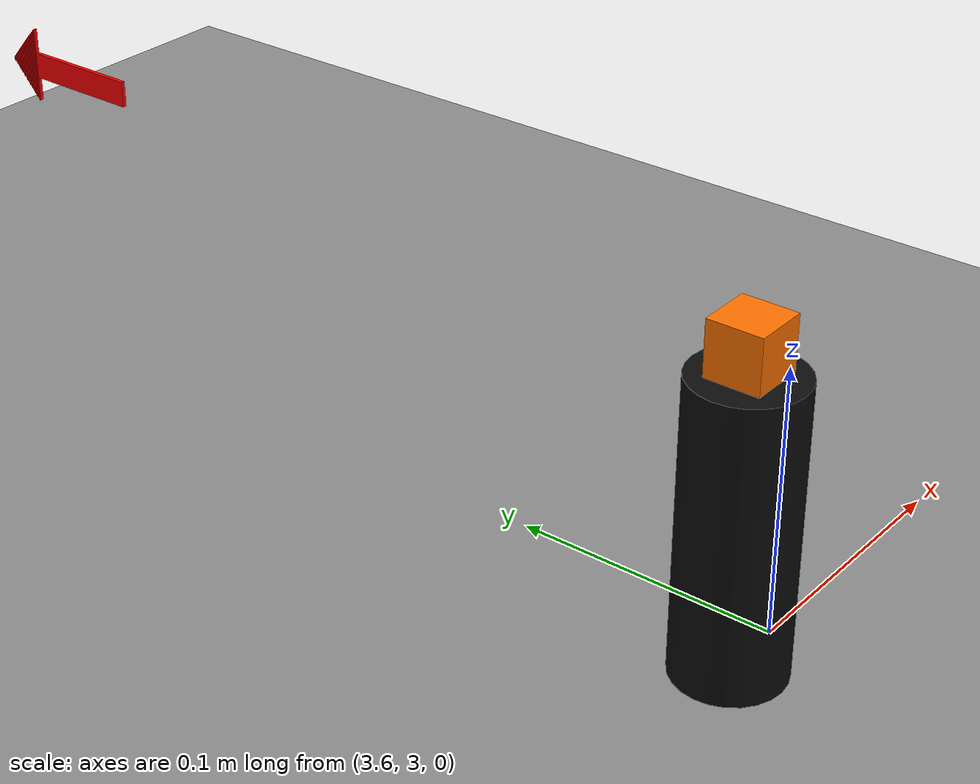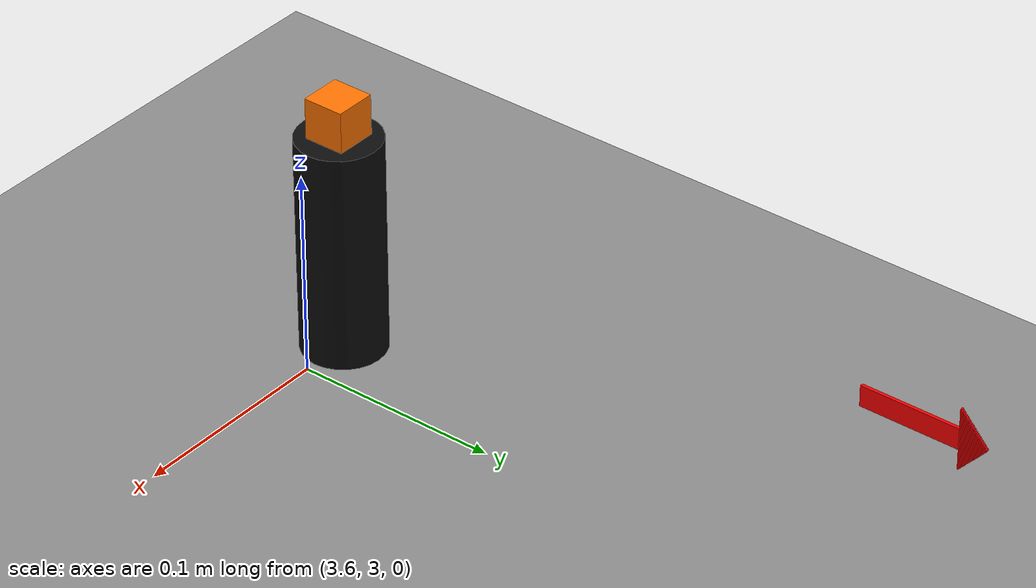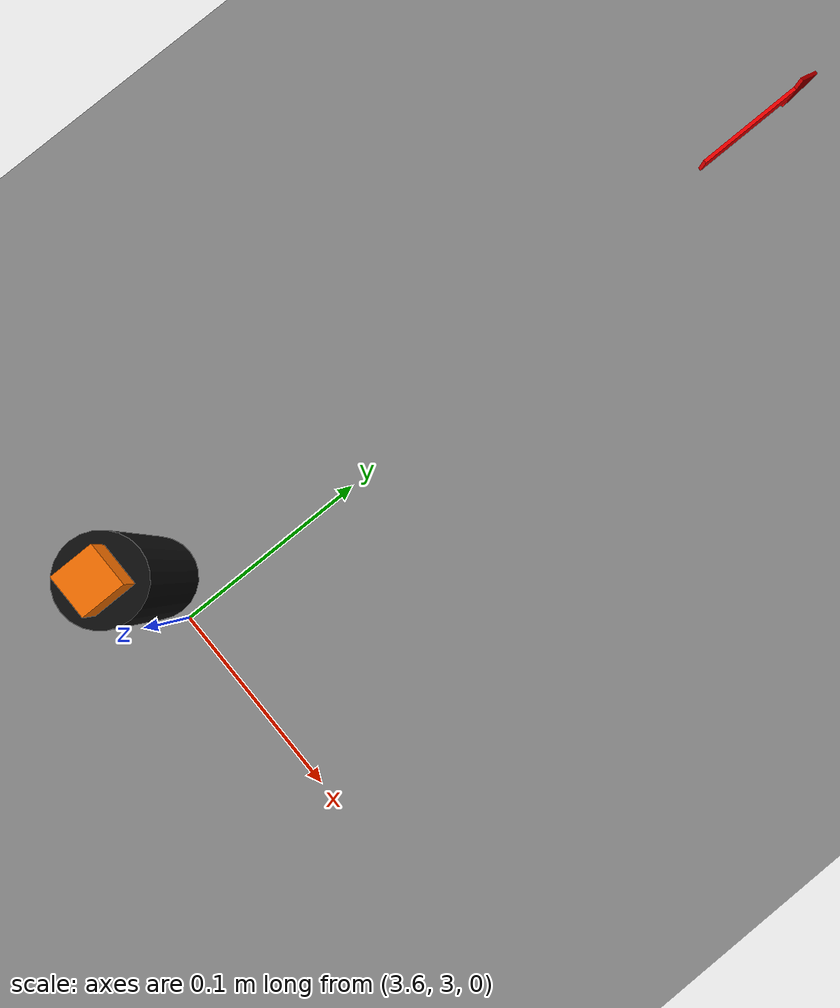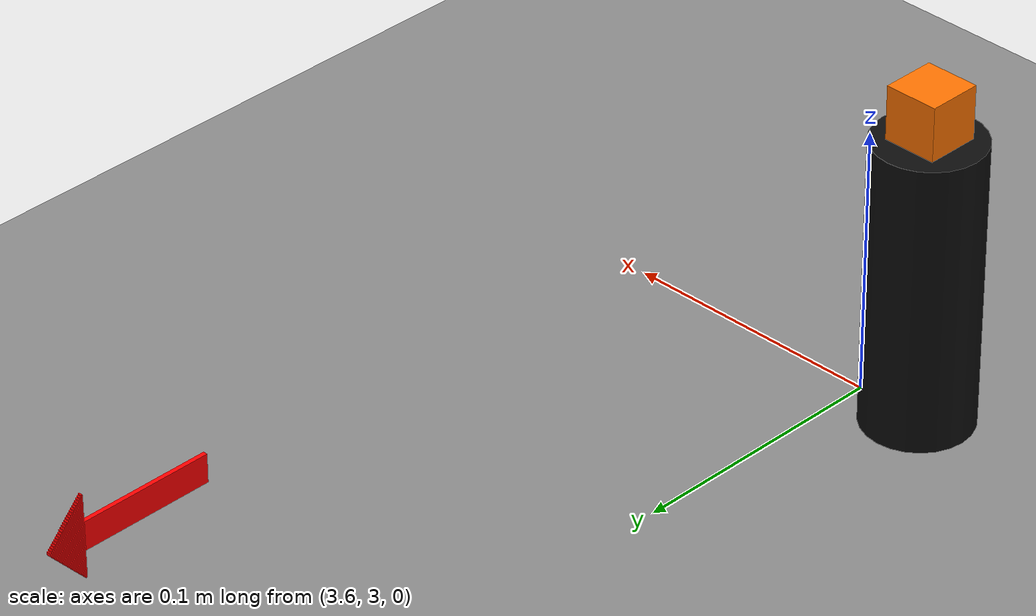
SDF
<sdf version="1.9">
 <world name="ros2_world">
  <model name="ground_plane">
   <static>true</static>
   <link name="link">
    <collision name="collision">
     <geometry><plane><normal>0 0 1</normal><size>30 30</size></plane></geometry>
    </collision>
    <visual name="visual">
     <geometry><plane><normal>0 0 1</normal><size>30 30</size></plane></geometry>
     <material><ambient>0.55 0.55 0.55 1</ambient><diffuse>0.55 0.55 0.55 1</diffuse></material>
    </visual>
   </link>
  </model>
  <model name="flechas">
   <static>true</static>
   <link name="flecha_5">
    <pose>3.59875 3.32 0.115 0 0 1.5708</pose>
    <visual name="p0">
     <pose>-0.0065 0 0 0 0 0</pose>
     <geometry><box><size>0.047 0.0015 0.01</size></box></geometry>
     <material><ambient>1 0 0 1</ambient><diffuse>1 0 0 1</diffuse></material>
    </visual>
    <visual name="p1">
     <pose>0.01726 0 0 0 0 0</pose>
     <geometry><box><size>0.00052 0.0015 0.029</size></box></geometry>
     <material><ambient>1 0 0 1</ambient><diffuse>1 0 0 1</diffuse></material>
    </visual>
    <visual name="p2">
     <pose>0.01778 0 0 0 0 0</pose>
     <geometry><box><size>0.00052 0.0015 0.02784</size></box></geometry>
     <material><ambient>1 0 0 1</ambient><diffuse>1 0 0 1</diffuse></material>
    </visual>
    <visual name="p3">
     <pose>0.0183 0 0 0 0 0</pose>
     <geometry><box><size>0.00052 0.0015 0.02668</size></box></geometry>
     <material><ambient>1 0 0 1</ambient><diffuse>1 0 0 1</diffuse></material>
    </visual>
    <visual name="p4">
     <pose>0.01882 0 0 0 0 0</pose>
     <geometry><box><size>0.00052 0.0015 0.02552</size></box></geometry>
     <material><ambient>1 0 0 1</ambient><diffuse>1 0 0 1</diffuse></material>
    </visual>
    <visual name="p5">
     <pose>0.01934 0 0 0 0 0</pose>
     <geometry><box><size>0.00052 0.0015 0.02436</size></box></geometry>
     <material><ambient>1 0 0 1</ambient><diffuse>1 0 0 1</diffuse></material>
    </visual>
    <visual name="p6">
     <pose>0.01986 0 0 0 0 0</pose>
     <geometry><box><size>0.00052 0.0015 0.0232</size></box></geometry>
     <material><ambient>1 0 0 1</ambient><diffuse>1 0 0 1</diffuse></material>
    </visual>
    <visual name="p7">
     <pose>0.02038 0 0 0 0 0</pose>
     <geometry><box><size>0.00052 0.0015 0.02204</size></box></geometry>
     <material><ambient>1 0 0 1</ambient><diffuse>1 0 0 1</diffuse></material>
    </visual>
    <visual name="p8">
     <pose>0.0209 0 0 0 0 0</pose>
     <geometry><box><size>0.00052 0.0015 0.02088</size></box></geometry>
     <material><ambient>1 0 0 1</ambient><diffuse>1 0 0 1</diffuse></material>
    </visual>
    <visual name="p9">
     <pose>0.02142 0 0 0 0 0</pose>
     <geometry><box><size>0.00052 0.0015 0.01972</size></box></geometry>
     <material><ambient>1 0 0 1</ambient><diffuse>1 0 0 1</diffuse></material>
    </visual>
    <visual name="p10">
     <pose>0.02194 0 0 0 0 0</pose>
     <geometry><box><size>0.00052 0.0015 0.01856</size></box></geometry>
     <material><ambient>1 0 0 1</ambient><diffuse>1 0 0 1</diffuse></material>
    </visual>
    <visual name="p11">
     <pose>0.02246 0 0 0 0 0</pose>
     <geometry><box><size>0.00052 0.0015 0.0174</size></box></geometry>
     <material><ambient>1 0 0 1</ambient><diffuse>1 0 0 1</diffuse></material>
    </visual>
    <visual name="p12">
     <pose>0.02298 0 0 0 0 0</pose>
     <geometry><box><size>0.00052 0.0015 0.01624</size></box></geometry>
     <material><ambient>1 0 0 1</ambient><diffuse>1 0 0 1</diffuse></material>
    </visual>
    <visual name="p13">
     <pose>0.0235 0 0 0 0 0</pose>
     <geometry><box><size>0.00052 0.0015 0.01508</size></box></geometry>
     <material><ambient>1 0 0 1</ambient><diffuse>1 0 0 1</diffuse></material>
    </visual>
    <visual name="p14">
     <pose>0.02402 0 0 0 0 0</pose>
     <geometry><box><size>0.00052 0.0015 0.01392</size></box></geometry>
     <material><ambient>1 0 0 1</ambient><diffuse>1 0 0 1</diffuse></material>
    </visual>
    <visual name="p15">
     <pose>0.02454 0 0 0 0 0</pose>
     <geometry><box><size>0.00052 0.0015 0.01276</size></box></geometry>
     <material><ambient>1 0 0 1</ambient><diffuse>1 0 0 1</diffuse></material>
    </visual>
    <visual name="p16">
     <pose>0.02506 0 0 0 0 0</pose>
     <geometry><box><size>0.00052 0.0015 0.0116</size></box></geometry>
     <material><ambient>1 0 0 1</ambient><diffuse>1 0 0 1</diffuse></material>
    </visual>
    <visual name="p17">
     <pose>0.02558 0 0 0 0 0</pose>
     <geometry><box><size>0.00052 0.0015 0.01044</size></box></geometry>
     <material><ambient>1 0 0 1</ambient><diffuse>1 0 0 1</diffuse></material>
    </visual>
    <visual name="p18">
     <pose>0.0261 0 0 0 0 0</pose>
     <geometry><box><size>0.00052 0.0015 0.00928</size></box></geometry>
     <material><ambient>1 0 0 1</ambient><diffuse>1 0 0 1</diffuse></material>
    </visual>
    <visual name="p19">
     <pose>0.02662 0 0 0 0 0</pose>
     <geometry><box><size>0.00052 0.0015 0.00812</size></box></geometry>
     <material><ambient>1 0 0 1</ambient><diffuse>1 0 0 1</diffuse></material>
    </visual>
    <visual name="p20">
     <pose>0.02714 0 0 0 0 0</pose>
     <geometry><box><size>0.00052 0.0015 0.00696</size></box></geometry>
     <material><ambient>1 0 0 1</ambient><diffuse>1 0 0 1</diffuse></material>
    </visual>
    <visual name="p21">
     <pose>0.02766 0 0 0 0 0</pose>
     <geometry><box><size>0.00052 0.0015 0.0058</size></box></geometry>
     <material><ambient>1 0 0 1</ambient><diffuse>1 0 0 1</diffuse></material>
    </visual>
    <visual name="p22">
     <pose>0.02818 0 0 0 0 0</pose>
     <geometry><box><size>0.00052 0.0015 0.00464</size></box></geometry>
     <material><ambient>1 0 0 1</ambient><diffuse>1 0 0 1</diffuse></material>
    </visual>
    <visual name="p23">
     <pose>0.0287 0 0 0 0 0</pose>
     <geometry><box><size>0.00052 0.0015 0.00348</size></box></geometry>
     <material><ambient>1 0 0 1</ambient><diffuse>1 0 0 1</diffuse></material>
    </visual>
    <visual name="p24">
     <pose>0.02922 0 0 0 0 0</pose>
     <geometry><box><size>0.00052 0.0015 0.00232</size></box></geometry>
     <material><ambient>1 0 0 1</ambient><diffuse>1 0 0 1</diffuse></material>
    </visual>
    <visual name="p25">
     <pose>0.02974 0 0 0 0 0</pose>
     <geometry><box><size>0.00052 0.0015 0.00116</size></box></geometry>
     <material><ambient>1 0 0 1</ambient><diffuse>1 0 0 1</diffuse></material>
    </visual>
   </link>
  </model>
  <model name="soporte_distractor_1">
   <static>true</static>
   <pose>3.575 3 0.05425 0 0 0</pose>
   <link name="link">
    <collision name="colision">
     <geometry><cylinder><radius>0.02</radius><length>0.1085</length></cylinder></geometry>
    </collision>
    <visual name="visual">
     <geometry><cylinder><radius>0.02</radius><length>0.1085</length></cylinder></geometry>
     <material><ambient>0.05 0.05 0.05 1</ambient><diffuse>0.05 0.05 0.05 1</diffuse></material>
    </visual>
   </link>
  </model>
  <model name="distractor_naranja_1">
   <pose>3.575 3 0.1187 0 0 0</pose>
   <link name="link">
    <inertial>
     <mass>0.0099</mass>
     <inertia>
      <ixx>6.6000e-07</ixx>
      <iyy>6.6000e-07</iyy>
      <izz>6.6000e-07</izz>
      <ixy>0</ixy>
      <ixz>0</ixz>
      <iyz>0</iyz>
     </inertia>
    </inertial>
    <collision name="colision">
     <geometry><box><size>0.02 0.02 0.02</size></box></geometry>
     <surface><friction><ode><mu>1</mu><mu2>1</mu2></ode></friction></surface>
    </collision>
    <visual name="visual">
     <geometry><box><size>0.02 0.02 0.02</size></box></geometry>
     <material><ambient>1 0.45 0 1</ambient><diffuse>1 0.45 0 1</diffuse></material>
    </visual>
   </link>
  </model>
 </world>
</sdf>
